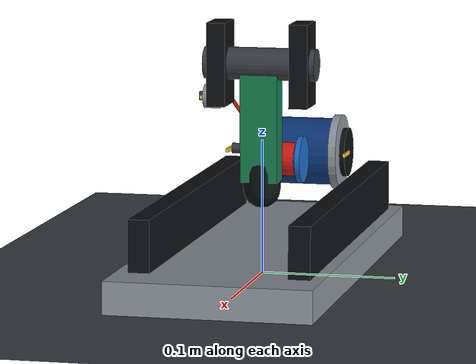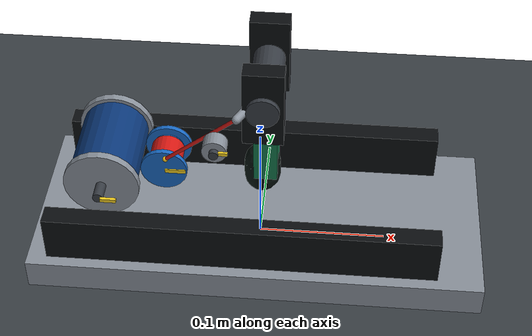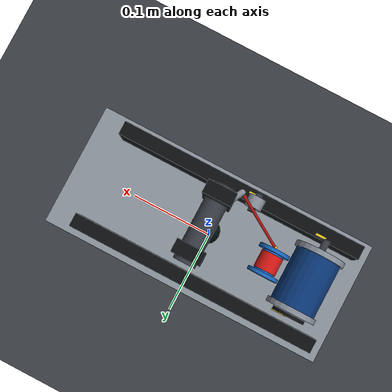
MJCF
<mujoco model="tendon_finger_testbench">
  <compiler angle="radian" autolimits="true"/>
  <option timestep="0.002" gravity="0 0 -9.80665" integrator="implicitfast">
    <flag energy="enable"/>
  </option>

  <statistic center="0 0 0.085" extent="0.28"/>

  <visual>
    <global azimuth="145" elevation="-22" offwidth="960" offheight="720"/>
    <headlight diffuse="0.78 0.78 0.78" ambient="0.32 0.32 0.32"
               specular="0.25 0.25 0.25"/>
    <quality shadowsize="4096"/>
  </visual>

  <default>
    <joint solreflimit="0.004 1" solimplimit="0.95 0.99 0.001"/>
    <geom friction="0.7 0.01 0.001" solref="0.004 1"
          solimp="0.95 0.99 0.001" margin="0.0002"
          contype="0" conaffinity="0"/>
    <site type="sphere" size="0.0025" rgba="0.95 0.75 0.12 1"/>
  </default>

  <asset>
    <texture name="floor_grid" type="2d" builtin="checker"
             rgb1="0.18 0.20 0.22" rgb2="0.28 0.30 0.32"
             mark="edge" markrgb="0.45 0.47 0.49" width="512" height="512"/>
    <material name="floor" texture="floor_grid" texuniform="true"
              texrepeat="8 8" reflectance="0.12"/>
    <material name="aluminum" rgba="0.55 0.58 0.62 1" metallic="0.65" roughness="0.32"/>
    <material name="black_polymer" rgba="0.045 0.055 0.065 1"
              metallic="0.1" roughness="0.52"/>
    <material name="motor_blue" rgba="0.04 0.22 0.48 1" metallic="0.5" roughness="0.3"/>
    <material name="spool" rgba="0.10 0.42 0.78 1" metallic="0.55" roughness="0.25"/>
    <material name="finger" rgba="0.08 0.48 0.30 1" metallic="0.05" roughness="0.48"/>
    <material name="rubber" rgba="0.025 0.07 0.055 1" roughness="0.86"/>
    <material name="bearing" rgba="0.22 0.24 0.27 1" metallic="0.85" roughness="0.2"/>
    <material name="cable" rgba="0.86 0.10 0.08 1" roughness="0.7"/>
    <material name="marker" rgba="0.98 0.83 0.12 1" emission="0.08"/>
  </asset>

  <worldbody>
    <light name="key" pos="-0.25 -0.35 0.55" dir="0.25 0.35 -0.8"
           directional="true" castshadow="true"/>
    <light name="fill" pos="0.30 0.25 0.30" dir="-0.3 -0.2 -0.4"
           directional="true" diffuse="0.35 0.38 0.42"/>
    <geom name="floor" type="plane" size="0.65 0.65 0.02" material="floor"
          contype="1" conaffinity="1"/>

    <body name="testbench">
      <geom name="base_plate" type="box" pos="0 0 0.012"
            size="0.175 0.075 0.012" material="aluminum"/>
      <geom name="left_rail" type="box" pos="-0.01 0.058 0.037"
            size="0.15 0.008 0.025" material="black_polymer"/>
      <geom name="right_rail" type="box" pos="-0.01 -0.058 0.037"
            size="0.15 0.008 0.025" material="black_polymer"/>

      <!-- Generic 42 mm-class geared motor housing. The housing is fixed;
           only the internal shaft body below rotates. -->
      <body name="motor_housing" pos="-0.118 0 0.075">
        <geom name="motor_can" type="cylinder" size="0.026 0.031"
              euler="1.57079632679 0 0" material="motor_blue"/>
        <geom name="motor_front_plate" type="cylinder" pos="0 -0.034 0"
              size="0.029 0.003" euler="1.57079632679 0 0" material="aluminum"/>
        <geom name="motor_rear_plate" type="cylinder" pos="0 0.034 0"
              size="0.029 0.003" euler="1.57079632679 0 0" material="aluminum"/>

        <body name="motor_rotor">
          <joint name="motor_shaft_joint" type="hinge" axis="0 1 0"
                 limited="true" range="0 100"
                 damping="0.0002" frictionloss="0.0003" armature="0.00012"/>
          <geom name="motor_shaft" type="cylinder" pos="0 -0.041 0"
                size="0.004 0.010" euler="1.57079632679 0 0"
                material="bearing" contype="0" conaffinity="0"/>
          <geom name="motor_encoder_disc" type="cylinder" pos="0 0.040 0"
                size="0.019 0.002" euler="1.57079632679 0 0"
                material="black_polymer" contype="0" conaffinity="0"/>
          <geom name="motor_encoder_marker" type="box" pos="0.0105 0.042 0"
                size="0.0085 0.001 0.0015" material="marker"
                contype="0" conaffinity="0"/>
          <geom name="motor_shaft_marker" type="box" pos="0.008 -0.052 0"
                size="0.006 0.0012 0.0015" material="marker"
                contype="0" conaffinity="0"/>
        </body>
      </body>

      <!-- Gearbox output and cable spool. The equality constraint below maps
           motor-shaft angle to this output angle through the editable ratio. -->
      <body name="spool_output" pos="-0.073 0 0.075">
        <joint name="spool_joint" type="hinge" axis="0 1 0"
               damping="0.0002" frictionloss="0.0002" armature="0.00035"/>
        <geom name="spool_hub" type="cylinder" size="0.012 0.012"
              euler="1.57079632679 0 0" material="spool"/>
        <geom name="spool_left_flange" type="cylinder" pos="0 0.014 0"
              size="0.018 0.002" euler="1.57079632679 0 0" material="spool"/>
        <geom name="spool_right_flange" type="cylinder" pos="0 -0.014 0"
              size="0.018 0.002" euler="1.57079632679 0 0" material="spool"/>
        <geom name="spool_cable_layer" type="cylinder" size="0.0128 0.010"
              euler="1.57079632679 0 0" material="cable"
              contype="0" conaffinity="0"/>
        <geom name="spool_rotation_marker" type="box" pos="0.009 -0.016 0"
              size="0.008 0.001 0.0016" material="marker"
              contype="0" conaffinity="0"/>
        <site name="spool_exit" pos="0.002 -0.017 0.0126"
              size="0.0022" material="cable"/>
      </body>

      <body name="guide_pulley" pos="-0.029 -0.045 0.128">
        <joint name="guide_pulley_joint" type="hinge" axis="0 1 0"
               damping="0.00001" armature="0.000005"/>
        <geom name="guide_axle" type="cylinder" size="0.0035 0.010"
              euler="1.57079632679 0 0" material="bearing"/>
        <geom name="guide_pulley_visual" type="cylinder" size="0.009 0.006"
              euler="1.57079632679 0 0" material="aluminum"/>
        <geom name="guide_rotation_marker" type="box" pos="0.0055 -0.007 0"
              size="0.0045 0.001 0.0013" material="marker"
              contype="0" conaffinity="0"/>
        <geom name="guide_wrap" type="sphere" size="0.009"
              rgba="0 0 0 0" contype="0" conaffinity="0"/>
        <site name="guide_side" pos="-0.009 0 0" rgba="0 0 0 0"/>
      </body>

      <body name="finger_mount" pos="0.005 0 0.158">
        <geom name="mount_left_cheek" type="box" pos="0 0.031 0"
              size="0.015 0.007 0.031" material="black_polymer"/>
        <geom name="mount_right_cheek" type="box" pos="0 -0.031 0"
              size="0.015 0.007 0.031" material="black_polymer"/>
        <geom name="joint_bearing" type="cylinder" size="0.012 0.042"
              euler="1.57079632679 0 0" material="bearing"/>

        <body name="finger_link">
          <joint name="finger_joint" type="hinge" axis="0 -1 0"
                 limited="true" range="-0.05 1.35"
                 damping="0.0015" frictionloss="0.0008"
                 stiffness="0.02" springref="0" armature="0.00018"/>
          <geom name="finger_core" type="capsule" fromto="0 0 0 0 0 -0.09"
                size="0.011" mass="0.055" rgba="0 0 0 0"
                contype="1" conaffinity="1"/>
          <geom name="finger_shell" type="box" pos="0 0 -0.045"
                size="0.009 0.014 0.043" material="finger"
                contype="0" conaffinity="0"/>
          <geom name="finger_horn" type="capsule"
                fromto="-0.002 -0.014 -0.003 -0.018 -0.045 -0.003"
                size="0.0032" material="aluminum"/>
          <site name="finger_tendon_anchor" pos="-0.018 -0.045 -0.003"
                size="0.003" material="cable"/>
          <geom name="fingertip_pad" type="capsule"
                fromto="-0.003 0 -0.081 -0.003 0 -0.094"
                size="0.014" material="rubber"
                contype="1" conaffinity="1"/>
          <site name="fingertip" pos="-0.003 0 -0.094" size="0.004"
                material="marker"/>
        </body>
      </body>
    </body>
  </worldbody>

  <!-- q_spool = q_motor / gear_ratio. The default 5:1 ratio is replaced at
       runtime when transmission.gear_ratio changes. -->
  <equality>
    <joint name="gearbox_constraint"
           joint1="spool_joint" joint2="motor_shaft_joint"
           polycoef="0 0.2 0 0 0"
           solref="0.002 1" solimp="0.999 0.9999 0.0001"/>
    <joint name="guide_pulley_constraint"
           joint1="guide_pulley_joint" joint2="spool_joint"
           polycoef="0 -1.333333333333 0 0 0"
           solref="0.002 1" solimp="0.999 0.9999 0.0001"/>
  </equality>

  <tendon>
    <!-- Physics tendon. Its generalized length is
         finger_moment_arm*q_finger - spool_radius*q_spool.
         A wide upper deadband makes it unilateral: it pulls but never pushes. -->
    <fixed name="drive_tendon"
           springlength="-0.001 10"
           stiffness="850" damping="1.5">
      <joint joint="spool_joint" coef="-0.012"/>
      <joint joint="finger_joint" coef="0.018"/>
    </fixed>

    <!-- Visual cable routed from a rotating spool site, around a guide pulley,
         to the moving finger horn. It is force-free; drive_tendon supplies the
         actual compliant transmission force. -->
    <spatial name="cable_path" width="0.0014"
             rgba="0.86 0.10 0.08 1">
      <site site="spool_exit"/>
      <geom geom="guide_wrap" sidesite="guide_side"/>
      <site site="finger_tendon_anchor"/>
    </spatial>
  </tendon>

  <actuator>
    <motor name="motor_torque" joint="motor_shaft_joint"
           gear="1" ctrllimited="true" ctrlrange="0 0.35"/>
  </actuator>

  <sensor>
    <jointpos name="motor_encoder_position" joint="motor_shaft_joint"/>
    <jointvel name="motor_encoder_velocity" joint="motor_shaft_joint"/>
    <jointpos name="spool_position" joint="spool_joint"/>
    <jointvel name="spool_velocity" joint="spool_joint"/>
    <jointpos name="output_position" joint="finger_joint"/>
    <jointvel name="output_velocity" joint="finger_joint"/>
    <tendonpos name="drive_tendon_length" tendon="drive_tendon"/>
    <tendonvel name="drive_tendon_velocity" tendon="drive_tendon"/>
    <tendonpos name="cable_path_length" tendon="cable_path"/>
    <actuatorfrc name="motor_actuator_force" actuator="motor_torque"/>
  </sensor>
</mujoco>
